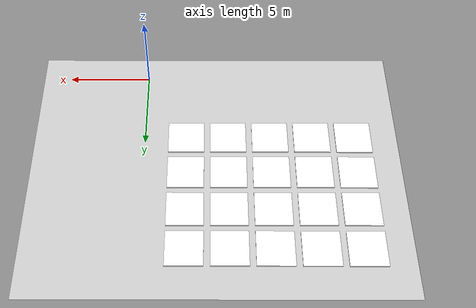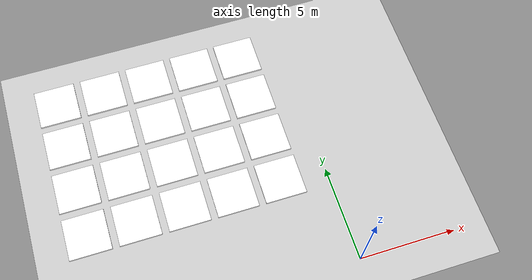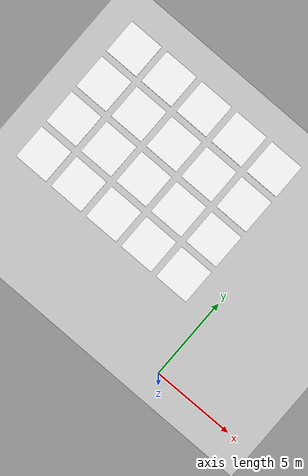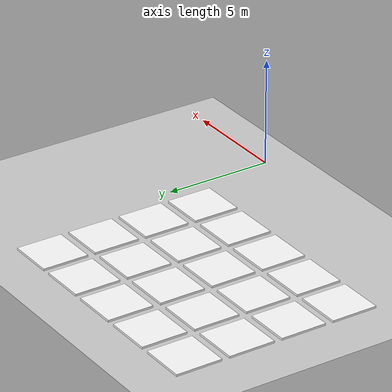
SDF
<sdf version="1.7">
 <world name="default">
  <model name="ground_plane">
   <static>1</static>
   <link name="link">
    <collision name="collision">
     <geometry><plane><normal>0 0 1</normal><size>100 100</size></plane></geometry>
     <surface>
      <contact><collide_bitmask>65535</collide_bitmask></contact>
      <friction><ode><mu>100</mu><mu2>50</mu2></ode></friction>
     </surface>
    </collision>
    <visual name="visual">
     <cast_shadows>0</cast_shadows>
     <geometry><plane><normal>0 0 1</normal><size>100 100</size></plane></geometry>
     <material>
      <script><uri>file://media/materials/scripts/gazebo.material</uri><name>Gazebo/Grey</name></script>
     </material>
    </visual>
   </link>
  </model>
  <model name="top_view_fuel_cluster_7_1">
   <link name="link">
    <inertial>
     <mass>0.489843</mass>
     <inertia>
      <ixx>0.0410659</ixx>
      <ixy>0</ixy>
      <ixz>0</ixz>
      <iyy>0.0410658</iyy>
      <iyz>0</iyz>
      <izz>0.0816405</izz>
     </inertia>
    </inertial>
    <visual name="visual">
     <geometry><box><size>2.14 2.14 0.099999</size></box></geometry>
     <material>
      <script>
       <uri>model://top_view_fuel_cluster/materials/scripts</uri>
       <uri>model://top_view_fuel_cluster/materials/textures</uri>
       <name>snf/Diffuse</name>
      </script>
      <shader type="pixel"><normal_map>__default__</normal_map></shader>
      <ambient>0.3 0.3 0.3 1</ambient>
      <diffuse>1 1 1 1</diffuse>
      <specular>0.01 0.01 0.01 1</specular>
      <emissive>0 0 0 1</emissive>
     </material>
    </visual>
    <collision name="collision">
     <geometry><box><size>2.14 2.14 0.100001</size></box></geometry>
     <surface>
      <friction>
       <ode><mu>1</mu><mu2>1</mu2><fdir1>0 0 0</fdir1><slip1>0</slip1><slip2>0</slip2></ode>
       <torsional>
        <coefficient>1</coefficient>
        <patch_radius>0</patch_radius>
        <surface_radius>0</surface_radius>
        <use_patch_radius>1</use_patch_radius>
        <ode><slip>0</slip></ode>
       </torsional>
      </friction>
      <bounce><restitution_coefficient>0</restitution_coefficient><threshold>1e+06</threshold></bounce>
      <contact>
       <collide_without_contact>0</collide_without_contact>
       <collide_without_contact_bitmask>1</collide_without_contact_bitmask>
       <collide_bitmask>1</collide_bitmask>
       <ode>
        <soft_cfm>0</soft_cfm>
        <soft_erp>0.2</soft_erp>
        <kp>1e+13</kp>
        <kd>1</kd>
        <max_vel>0.01</max_vel>
        <min_depth>0</min_depth>
       </ode>
       <bullet>
        <split_impulse>1</split_impulse>
        <split_impulse_penetration_threshold>-0.01</split_impulse_penetration_threshold>
        <soft_cfm>0</soft_cfm>
        <soft_erp>0.2</soft_erp>
        <kp>1e+13</kp>
        <kd>1</kd>
       </bullet>
      </contact>
     </surface>
    </collision>
   </link>
   <static>0</static>
   <pose>-12.5 5 0.5 0 -0 0</pose>
  </model>
  <model name="top_view_fuel_cluster_7_2">
   <link name="link">
    <inertial>
     <mass>0.489843</mass>
     <inertia>
      <ixx>0.0410659</ixx>
      <ixy>0</ixy>
      <ixz>0</ixz>
      <iyy>0.0410658</iyy>
      <iyz>0</iyz>
      <izz>0.0816405</izz>
     </inertia>
    </inertial>
    <visual name="visual">
     <geometry><box><size>2.14 2.14 0.099999</size></box></geometry>
     <material>
      <script>
       <uri>model://top_view_fuel_cluster/materials/scripts</uri>
       <uri>model://top_view_fuel_cluster/materials/textures</uri>
       <name>snf/Diffuse</name>
      </script>
      <shader type="pixel"><normal_map>__default__</normal_map></shader>
      <ambient>0.3 0.3 0.3 1</ambient>
      <diffuse>1 1 1 1</diffuse>
      <specular>0.01 0.01 0.01 1</specular>
      <emissive>0 0 0 1</emissive>
     </material>
    </visual>
    <collision name="collision">
     <geometry><box><size>2.14 2.14 0.100001</size></box></geometry>
     <surface>
      <friction>
       <ode><mu>1</mu><mu2>1</mu2><fdir1>0 0 0</fdir1><slip1>0</slip1><slip2>0</slip2></ode>
       <torsional>
        <coefficient>1</coefficient>
        <patch_radius>0</patch_radius>
        <surface_radius>0</surface_radius>
        <use_patch_radius>1</use_patch_radius>
        <ode><slip>0</slip></ode>
       </torsional>
      </friction>
      <bounce><restitution_coefficient>0</restitution_coefficient><threshold>1e+06</threshold></bounce>
      <contact>
       <collide_without_contact>0</collide_without_contact>
       <collide_without_contact_bitmask>1</collide_without_contact_bitmask>
       <collide_bitmask>1</collide_bitmask>
       <ode>
        <soft_cfm>0</soft_cfm>
        <soft_erp>0.2</soft_erp>
        <kp>1e+13</kp>
        <kd>1</kd>
        <max_vel>0.01</max_vel>
        <min_depth>0</min_depth>
       </ode>
       <bullet>
        <split_impulse>1</split_impulse>
        <split_impulse_penetration_threshold>-0.01</split_impulse_penetration_threshold>
        <soft_cfm>0</soft_cfm>
        <soft_erp>0.2</soft_erp>
        <kp>1e+13</kp>
        <kd>1</kd>
       </bullet>
      </contact>
     </surface>
    </collision>
   </link>
   <static>0</static>
   <pose>-10 5 0.5 0 -0 0</pose>
  </model>
  <model name="top_view_fuel_cluster_7_3">
   <link name="link">
    <inertial>
     <mass>0.489843</mass>
     <inertia>
      <ixx>0.0410659</ixx>
      <ixy>0</ixy>
      <ixz>0</ixz>
      <iyy>0.0410658</iyy>
      <iyz>0</iyz>
      <izz>0.0816405</izz>
     </inertia>
    </inertial>
    <visual name="visual">
     <geometry><box><size>2.14 2.14 0.099999</size></box></geometry>
     <material>
      <script>
       <uri>model://top_view_fuel_cluster/materials/scripts</uri>
       <uri>model://top_view_fuel_cluster/materials/textures</uri>
       <name>snf/Diffuse</name>
      </script>
      <shader type="pixel"><normal_map>__default__</normal_map></shader>
      <ambient>0.3 0.3 0.3 1</ambient>
      <diffuse>1 1 1 1</diffuse>
      <specular>0.01 0.01 0.01 1</specular>
      <emissive>0 0 0 1</emissive>
     </material>
    </visual>
    <collision name="collision">
     <geometry><box><size>2.14 2.14 0.100001</size></box></geometry>
     <surface>
      <friction>
       <ode><mu>1</mu><mu2>1</mu2><fdir1>0 0 0</fdir1><slip1>0</slip1><slip2>0</slip2></ode>
       <torsional>
        <coefficient>1</coefficient>
        <patch_radius>0</patch_radius>
        <surface_radius>0</surface_radius>
        <use_patch_radius>1</use_patch_radius>
        <ode><slip>0</slip></ode>
       </torsional>
      </friction>
      <bounce><restitution_coefficient>0</restitution_coefficient><threshold>1e+06</threshold></bounce>
      <contact>
       <collide_without_contact>0</collide_without_contact>
       <collide_without_contact_bitmask>1</collide_without_contact_bitmask>
       <collide_bitmask>1</collide_bitmask>
       <ode>
        <soft_cfm>0</soft_cfm>
        <soft_erp>0.2</soft_erp>
        <kp>1e+13</kp>
        <kd>1</kd>
        <max_vel>0.01</max_vel>
        <min_depth>0</min_depth>
       </ode>
       <bullet>
        <split_impulse>1</split_impulse>
        <split_impulse_penetration_threshold>-0.01</split_impulse_penetration_threshold>
        <soft_cfm>0</soft_cfm>
        <soft_erp>0.2</soft_erp>
        <kp>1e+13</kp>
        <kd>1</kd>
       </bullet>
      </contact>
     </surface>
    </collision>
   </link>
   <static>0</static>
   <pose>-7.5 5 0.5 0 -0 0</pose>
  </model>
  <model name="top_view_fuel_cluster_7_4">
   <link name="link">
    <inertial>
     <mass>0.489843</mass>
     <inertia>
      <ixx>0.0410659</ixx>
      <ixy>0</ixy>
      <ixz>0</ixz>
      <iyy>0.0410658</iyy>
      <iyz>0</iyz>
      <izz>0.0816405</izz>
     </inertia>
    </inertial>
    <visual name="visual">
     <geometry><box><size>2.14 2.14 0.099999</size></box></geometry>
     <material>
      <script>
       <uri>model://top_view_fuel_cluster/materials/scripts</uri>
       <uri>model://top_view_fuel_cluster/materials/textures</uri>
       <name>snf/Diffuse</name>
      </script>
      <shader type="pixel"><normal_map>__default__</normal_map></shader>
      <ambient>0.3 0.3 0.3 1</ambient>
      <diffuse>1 1 1 1</diffuse>
      <specular>0.01 0.01 0.01 1</specular>
      <emissive>0 0 0 1</emissive>
     </material>
    </visual>
    <collision name="collision">
     <geometry><box><size>2.14 2.14 0.100001</size></box></geometry>
     <surface>
      <friction>
       <ode><mu>1</mu><mu2>1</mu2><fdir1>0 0 0</fdir1><slip1>0</slip1><slip2>0</slip2></ode>
       <torsional>
        <coefficient>1</coefficient>
        <patch_radius>0</patch_radius>
        <surface_radius>0</surface_radius>
        <use_patch_radius>1</use_patch_radius>
        <ode><slip>0</slip></ode>
       </torsional>
      </friction>
      <bounce><restitution_coefficient>0</restitution_coefficient><threshold>1e+06</threshold></bounce>
      <contact>
       <collide_without_contact>0</collide_without_contact>
       <collide_without_contact_bitmask>1</collide_without_contact_bitmask>
       <collide_bitmask>1</collide_bitmask>
       <ode>
        <soft_cfm>0</soft_cfm>
        <soft_erp>0.2</soft_erp>
        <kp>1e+13</kp>
        <kd>1</kd>
        <max_vel>0.01</max_vel>
        <min_depth>0</min_depth>
       </ode>
       <bullet>
        <split_impulse>1</split_impulse>
        <split_impulse_penetration_threshold>-0.01</split_impulse_penetration_threshold>
        <soft_cfm>0</soft_cfm>
        <soft_erp>0.2</soft_erp>
        <kp>1e+13</kp>
        <kd>1</kd>
       </bullet>
      </contact>
     </surface>
    </collision>
   </link>
   <static>0</static>
   <pose>-5 5 0.5 0 -0 0</pose>
  </model>
  <model name="top_view_fuel_cluster_7_5">
   <link name="link">
    <inertial>
     <mass>0.489843</mass>
     <inertia>
      <ixx>0.0410659</ixx>
      <ixy>0</ixy>
      <ixz>0</ixz>
      <iyy>0.0410658</iyy>
      <iyz>0</iyz>
      <izz>0.0816405</izz>
     </inertia>
    </inertial>
    <visual name="visual">
     <geometry><box><size>2.14 2.14 0.099999</size></box></geometry>
     <material>
      <script>
       <uri>model://top_view_fuel_cluster/materials/scripts</uri>
       <uri>model://top_view_fuel_cluster/materials/textures</uri>
       <name>snf/Diffuse</name>
      </script>
      <shader type="pixel"><normal_map>__default__</normal_map></shader>
      <ambient>0.3 0.3 0.3 1</ambient>
      <diffuse>1 1 1 1</diffuse>
      <specular>0.01 0.01 0.01 1</specular>
      <emissive>0 0 0 1</emissive>
     </material>
    </visual>
    <collision name="collision">
     <geometry><box><size>2.14 2.14 0.100001</size></box></geometry>
     <surface>
      <friction>
       <ode><mu>1</mu><mu2>1</mu2><fdir1>0 0 0</fdir1><slip1>0</slip1><slip2>0</slip2></ode>
       <torsional>
        <coefficient>1</coefficient>
        <patch_radius>0</patch_radius>
        <surface_radius>0</surface_radius>
        <use_patch_radius>1</use_patch_radius>
        <ode><slip>0</slip></ode>
       </torsional>
      </friction>
      <bounce><restitution_coefficient>0</restitution_coefficient><threshold>1e+06</threshold></bounce>
      <contact>
       <collide_without_contact>0</collide_without_contact>
       <collide_without_contact_bitmask>1</collide_without_contact_bitmask>
       <collide_bitmask>1</collide_bitmask>
       <ode>
        <soft_cfm>0</soft_cfm>
        <soft_erp>0.2</soft_erp>
        <kp>1e+13</kp>
        <kd>1</kd>
        <max_vel>0.01</max_vel>
        <min_depth>0</min_depth>
       </ode>
       <bullet>
        <split_impulse>1</split_impulse>
        <split_impulse_penetration_threshold>-0.01</split_impulse_penetration_threshold>
        <soft_cfm>0</soft_cfm>
        <soft_erp>0.2</soft_erp>
        <kp>1e+13</kp>
        <kd>1</kd>
       </bullet>
      </contact>
     </surface>
    </collision>
   </link>
   <static>0</static>
   <pose>-2.5 5 0.5 0 -0 0</pose>
  </model>
  <model name="top_view_fuel_cluster_8_1">
   <link name="link">
    <inertial>
     <mass>0.489843</mass>
     <inertia>
      <ixx>0.0410659</ixx>
      <ixy>0</ixy>
      <ixz>0</ixz>
      <iyy>0.0410658</iyy>
      <iyz>0</iyz>
      <izz>0.0816405</izz>
     </inertia>
    </inertial>
    <visual name="visual">
     <geometry><box><size>2.14 2.14 0.099999</size></box></geometry>
     <material>
      <script>
       <uri>model://top_view_fuel_cluster/materials/scripts</uri>
       <uri>model://top_view_fuel_cluster/materials/textures</uri>
       <name>snf/Diffuse</name>
      </script>
      <shader type="pixel"><normal_map>__default__</normal_map></shader>
      <ambient>0.3 0.3 0.3 1</ambient>
      <diffuse>1 1 1 1</diffuse>
      <specular>0.01 0.01 0.01 1</specular>
      <emissive>0 0 0 1</emissive>
     </material>
    </visual>
    <collision name="collision">
     <geometry><box><size>2.14 2.14 0.100001</size></box></geometry>
     <surface>
      <friction>
       <ode><mu>1</mu><mu2>1</mu2><fdir1>0 0 0</fdir1><slip1>0</slip1><slip2>0</slip2></ode>
       <torsional>
        <coefficient>1</coefficient>
        <patch_radius>0</patch_radius>
        <surface_radius>0</surface_radius>
        <use_patch_radius>1</use_patch_radius>
        <ode><slip>0</slip></ode>
       </torsional>
      </friction>
      <bounce><restitution_coefficient>0</restitution_coefficient><threshold>1e+06</threshold></bounce>
      <contact>
       <collide_without_contact>0</collide_without_contact>
       <collide_without_contact_bitmask>1</collide_without_contact_bitmask>
       <collide_bitmask>1</collide_bitmask>
       <ode>
        <soft_cfm>0</soft_cfm>
        <soft_erp>0.2</soft_erp>
        <kp>1e+13</kp>
        <kd>1</kd>
        <max_vel>0.01</max_vel>
        <min_depth>0</min_depth>
       </ode>
       <bullet>
        <split_impulse>1</split_impulse>
        <split_impulse_penetration_threshold>-0.01</split_impulse_penetration_threshold>
        <soft_cfm>0</soft_cfm>
        <soft_erp>0.2</soft_erp>
        <kp>1e+13</kp>
        <kd>1</kd>
       </bullet>
      </contact>
     </surface>
    </collision>
   </link>
   <static>0</static>
   <pose>-12.5 7.5 0.5 0 -0 0</pose>
  </model>
  <model name="top_view_fuel_cluster_8_2">
   <link name="link">
    <inertial>
     <mass>0.489843</mass>
     <inertia>
      <ixx>0.0410659</ixx>
      <ixy>0</ixy>
      <ixz>0</ixz>
      <iyy>0.0410658</iyy>
      <iyz>0</iyz>
      <izz>0.0816405</izz>
     </inertia>
    </inertial>
    <visual name="visual">
     <geometry><box><size>2.14 2.14 0.099999</size></box></geometry>
     <material>
      <script>
       <uri>model://top_view_fuel_cluster/materials/scripts</uri>
       <uri>model://top_view_fuel_cluster/materials/textures</uri>
       <name>snf/Diffuse</name>
      </script>
      <shader type="pixel"><normal_map>__default__</normal_map></shader>
      <ambient>0.3 0.3 0.3 1</ambient>
      <diffuse>1 1 1 1</diffuse>
      <specular>0.01 0.01 0.01 1</specular>
      <emissive>0 0 0 1</emissive>
     </material>
    </visual>
    <collision name="collision">
     <geometry><box><size>2.14 2.14 0.100001</size></box></geometry>
     <surface>
      <friction>
       <ode><mu>1</mu><mu2>1</mu2><fdir1>0 0 0</fdir1><slip1>0</slip1><slip2>0</slip2></ode>
       <torsional>
        <coefficient>1</coefficient>
        <patch_radius>0</patch_radius>
        <surface_radius>0</surface_radius>
        <use_patch_radius>1</use_patch_radius>
        <ode><slip>0</slip></ode>
       </torsional>
      </friction>
      <bounce><restitution_coefficient>0</restitution_coefficient><threshold>1e+06</threshold></bounce>
      <contact>
       <collide_without_contact>0</collide_without_contact>
       <collide_without_contact_bitmask>1</collide_without_contact_bitmask>
       <collide_bitmask>1</collide_bitmask>
       <ode>
        <soft_cfm>0</soft_cfm>
        <soft_erp>0.2</soft_erp>
        <kp>1e+13</kp>
        <kd>1</kd>
        <max_vel>0.01</max_vel>
        <min_depth>0</min_depth>
       </ode>
       <bullet>
        <split_impulse>1</split_impulse>
        <split_impulse_penetration_threshold>-0.01</split_impulse_penetration_threshold>
        <soft_cfm>0</soft_cfm>
        <soft_erp>0.2</soft_erp>
        <kp>1e+13</kp>
        <kd>1</kd>
       </bullet>
      </contact>
     </surface>
    </collision>
   </link>
   <static>0</static>
   <pose>-10 7.5 0.5 0 -0 0</pose>
  </model>
  <model name="top_view_fuel_cluster_8_3">
   <link name="link">
    <inertial>
     <mass>0.489843</mass>
     <inertia>
      <ixx>0.0410659</ixx>
      <ixy>0</ixy>
      <ixz>0</ixz>
      <iyy>0.0410658</iyy>
      <iyz>0</iyz>
      <izz>0.0816405</izz>
     </inertia>
    </inertial>
    <visual name="visual">
     <geometry><box><size>2.14 2.14 0.099999</size></box></geometry>
     <material>
      <script>
       <uri>model://top_view_fuel_cluster/materials/scripts</uri>
       <uri>model://top_view_fuel_cluster/materials/textures</uri>
       <name>snf/Diffuse</name>
      </script>
      <shader type="pixel"><normal_map>__default__</normal_map></shader>
      <ambient>0.3 0.3 0.3 1</ambient>
      <diffuse>1 1 1 1</diffuse>
      <specular>0.01 0.01 0.01 1</specular>
      <emissive>0 0 0 1</emissive>
     </material>
    </visual>
    <collision name="collision">
     <geometry><box><size>2.14 2.14 0.100001</size></box></geometry>
     <surface>
      <friction>
       <ode><mu>1</mu><mu2>1</mu2><fdir1>0 0 0</fdir1><slip1>0</slip1><slip2>0</slip2></ode>
       <torsional>
        <coefficient>1</coefficient>
        <patch_radius>0</patch_radius>
        <surface_radius>0</surface_radius>
        <use_patch_radius>1</use_patch_radius>
        <ode><slip>0</slip></ode>
       </torsional>
      </friction>
      <bounce><restitution_coefficient>0</restitution_coefficient><threshold>1e+06</threshold></bounce>
      <contact>
       <collide_without_contact>0</collide_without_contact>
       <collide_without_contact_bitmask>1</collide_without_contact_bitmask>
       <collide_bitmask>1</collide_bitmask>
       <ode>
        <soft_cfm>0</soft_cfm>
        <soft_erp>0.2</soft_erp>
        <kp>1e+13</kp>
        <kd>1</kd>
        <max_vel>0.01</max_vel>
        <min_depth>0</min_depth>
       </ode>
       <bullet>
        <split_impulse>1</split_impulse>
        <split_impulse_penetration_threshold>-0.01</split_impulse_penetration_threshold>
        <soft_cfm>0</soft_cfm>
        <soft_erp>0.2</soft_erp>
        <kp>1e+13</kp>
        <kd>1</kd>
       </bullet>
      </contact>
     </surface>
    </collision>
   </link>
   <static>0</static>
   <pose>-7.5 7.5 0.5 0 -0 0</pose>
  </model>
  <model name="top_view_fuel_cluster_8_4">
   <link name="link">
    <inertial>
     <mass>0.489843</mass>
     <inertia>
      <ixx>0.0410659</ixx>
      <ixy>0</ixy>
      <ixz>0</ixz>
      <iyy>0.0410658</iyy>
      <iyz>0</iyz>
      <izz>0.0816405</izz>
     </inertia>
    </inertial>
    <visual name="visual">
     <geometry><box><size>2.14 2.14 0.099999</size></box></geometry>
     <material>
      <script>
       <uri>model://top_view_fuel_cluster/materials/scripts</uri>
       <uri>model://top_view_fuel_cluster/materials/textures</uri>
       <name>snf/Diffuse</name>
      </script>
      <shader type="pixel"><normal_map>__default__</normal_map></shader>
      <ambient>0.3 0.3 0.3 1</ambient>
      <diffuse>1 1 1 1</diffuse>
      <specular>0.01 0.01 0.01 1</specular>
      <emissive>0 0 0 1</emissive>
     </material>
    </visual>
    <collision name="collision">
     <geometry><box><size>2.14 2.14 0.100001</size></box></geometry>
     <surface>
      <friction>
       <ode><mu>1</mu><mu2>1</mu2><fdir1>0 0 0</fdir1><slip1>0</slip1><slip2>0</slip2></ode>
       <torsional>
        <coefficient>1</coefficient>
        <patch_radius>0</patch_radius>
        <surface_radius>0</surface_radius>
        <use_patch_radius>1</use_patch_radius>
        <ode><slip>0</slip></ode>
       </torsional>
      </friction>
      <bounce><restitution_coefficient>0</restitution_coefficient><threshold>1e+06</threshold></bounce>
      <contact>
       <collide_without_contact>0</collide_without_contact>
       <collide_without_contact_bitmask>1</collide_without_contact_bitmask>
       <collide_bitmask>1</collide_bitmask>
       <ode>
        <soft_cfm>0</soft_cfm>
        <soft_erp>0.2</soft_erp>
        <kp>1e+13</kp>
        <kd>1</kd>
        <max_vel>0.01</max_vel>
        <min_depth>0</min_depth>
       </ode>
       <bullet>
        <split_impulse>1</split_impulse>
        <split_impulse_penetration_threshold>-0.01</split_impulse_penetration_threshold>
        <soft_cfm>0</soft_cfm>
        <soft_erp>0.2</soft_erp>
        <kp>1e+13</kp>
        <kd>1</kd>
       </bullet>
      </contact>
     </surface>
    </collision>
   </link>
   <static>0</static>
   <pose>-5 7.5 0.5 0 -0 0</pose>
  </model>
  <model name="top_view_fuel_cluster_8_5">
   <link name="link">
    <inertial>
     <mass>0.489843</mass>
     <inertia>
      <ixx>0.0410659</ixx>
      <ixy>0</ixy>
      <ixz>0</ixz>
      <iyy>0.0410658</iyy>
      <iyz>0</iyz>
      <izz>0.0816405</izz>
     </inertia>
    </inertial>
    <visual name="visual">
     <geometry><box><size>2.14 2.14 0.099999</size></box></geometry>
     <material>
      <script>
       <uri>model://top_view_fuel_cluster/materials/scripts</uri>
       <uri>model://top_view_fuel_cluster/materials/textures</uri>
       <name>snf/Diffuse</name>
      </script>
      <shader type="pixel"><normal_map>__default__</normal_map></shader>
      <ambient>0.3 0.3 0.3 1</ambient>
      <diffuse>1 1 1 1</diffuse>
      <specular>0.01 0.01 0.01 1</specular>
      <emissive>0 0 0 1</emissive>
     </material>
    </visual>
    <collision name="collision">
     <geometry><box><size>2.14 2.14 0.100001</size></box></geometry>
     <surface>
      <friction>
       <ode><mu>1</mu><mu2>1</mu2><fdir1>0 0 0</fdir1><slip1>0</slip1><slip2>0</slip2></ode>
       <torsional>
        <coefficient>1</coefficient>
        <patch_radius>0</patch_radius>
        <surface_radius>0</surface_radius>
        <use_patch_radius>1</use_patch_radius>
        <ode><slip>0</slip></ode>
       </torsional>
      </friction>
      <bounce><restitution_coefficient>0</restitution_coefficient><threshold>1e+06</threshold></bounce>
      <contact>
       <collide_without_contact>0</collide_without_contact>
       <collide_without_contact_bitmask>1</collide_without_contact_bitmask>
       <collide_bitmask>1</collide_bitmask>
       <ode>
        <soft_cfm>0</soft_cfm>
        <soft_erp>0.2</soft_erp>
        <kp>1e+13</kp>
        <kd>1</kd>
        <max_vel>0.01</max_vel>
        <min_depth>0</min_depth>
       </ode>
       <bullet>
        <split_impulse>1</split_impulse>
        <split_impulse_penetration_threshold>-0.01</split_impulse_penetration_threshold>
        <soft_cfm>0</soft_cfm>
        <soft_erp>0.2</soft_erp>
        <kp>1e+13</kp>
        <kd>1</kd>
       </bullet>
      </contact>
     </surface>
    </collision>
   </link>
   <static>0</static>
   <pose>-2.5 7.5 0.5 0 -0 0</pose>
  </model>
  <model name="top_view_fuel_cluster_9_1">
   <link name="link">
    <inertial>
     <mass>0.489843</mass>
     <inertia>
      <ixx>0.0410659</ixx>
      <ixy>0</ixy>
      <ixz>0</ixz>
      <iyy>0.0410658</iyy>
      <iyz>0</iyz>
      <izz>0.0816405</izz>
     </inertia>
    </inertial>
    <visual name="visual">
     <geometry><box><size>2.14 2.14 0.099999</size></box></geometry>
     <material>
      <script>
       <uri>model://top_view_fuel_cluster/materials/scripts</uri>
       <uri>model://top_view_fuel_cluster/materials/textures</uri>
       <name>snf/Diffuse</name>
      </script>
      <shader type="pixel"><normal_map>__default__</normal_map></shader>
      <ambient>0.3 0.3 0.3 1</ambient>
      <diffuse>1 1 1 1</diffuse>
      <specular>0.01 0.01 0.01 1</specular>
      <emissive>0 0 0 1</emissive>
     </material>
    </visual>
    <collision name="collision">
     <geometry><box><size>2.14 2.14 0.100001</size></box></geometry>
     <surface>
      <friction>
       <ode><mu>1</mu><mu2>1</mu2><fdir1>0 0 0</fdir1><slip1>0</slip1><slip2>0</slip2></ode>
       <torsional>
        <coefficient>1</coefficient>
        <patch_radius>0</patch_radius>
        <surface_radius>0</surface_radius>
        <use_patch_radius>1</use_patch_radius>
        <ode><slip>0</slip></ode>
       </torsional>
      </friction>
      <bounce><restitution_coefficient>0</restitution_coefficient><threshold>1e+06</threshold></bounce>
      <contact>
       <collide_without_contact>0</collide_without_contact>
       <collide_without_contact_bitmask>1</collide_without_contact_bitmask>
       <collide_bitmask>1</collide_bitmask>
       <ode>
        <soft_cfm>0</soft_cfm>
        <soft_erp>0.2</soft_erp>
        <kp>1e+13</kp>
        <kd>1</kd>
        <max_vel>0.01</max_vel>
        <min_depth>0</min_depth>
       </ode>
       <bullet>
        <split_impulse>1</split_impulse>
        <split_impulse_penetration_threshold>-0.01</split_impulse_penetration_threshold>
        <soft_cfm>0</soft_cfm>
        <soft_erp>0.2</soft_erp>
        <kp>1e+13</kp>
        <kd>1</kd>
       </bullet>
      </contact>
     </surface>
    </collision>
   </link>
   <static>0</static>
   <pose>-12.5 10.0 0.5 0 -0 0</pose>
  </model>
  <model name="top_view_fuel_cluster_9_2">
   <link name="link">
    <inertial>
     <mass>0.489843</mass>
     <inertia>
      <ixx>0.0410659</ixx>
      <ixy>0</ixy>
      <ixz>0</ixz>
      <iyy>0.0410658</iyy>
      <iyz>0</iyz>
      <izz>0.0816405</izz>
     </inertia>
    </inertial>
    <visual name="visual">
     <geometry><box><size>2.14 2.14 0.099999</size></box></geometry>
     <material>
      <script>
       <uri>model://top_view_fuel_cluster/materials/scripts</uri>
       <uri>model://top_view_fuel_cluster/materials/textures</uri>
       <name>snf/Diffuse</name>
      </script>
      <shader type="pixel"><normal_map>__default__</normal_map></shader>
      <ambient>0.3 0.3 0.3 1</ambient>
      <diffuse>1 1 1 1</diffuse>
      <specular>0.01 0.01 0.01 1</specular>
      <emissive>0 0 0 1</emissive>
     </material>
    </visual>
    <collision name="collision">
     <geometry><box><size>2.14 2.14 0.100001</size></box></geometry>
     <surface>
      <friction>
       <ode><mu>1</mu><mu2>1</mu2><fdir1>0 0 0</fdir1><slip1>0</slip1><slip2>0</slip2></ode>
       <torsional>
        <coefficient>1</coefficient>
        <patch_radius>0</patch_radius>
        <surface_radius>0</surface_radius>
        <use_patch_radius>1</use_patch_radius>
        <ode><slip>0</slip></ode>
       </torsional>
      </friction>
      <bounce><restitution_coefficient>0</restitution_coefficient><threshold>1e+06</threshold></bounce>
      <contact>
       <collide_without_contact>0</collide_without_contact>
       <collide_without_contact_bitmask>1</collide_without_contact_bitmask>
       <collide_bitmask>1</collide_bitmask>
       <ode>
        <soft_cfm>0</soft_cfm>
        <soft_erp>0.2</soft_erp>
        <kp>1e+13</kp>
        <kd>1</kd>
        <max_vel>0.01</max_vel>
        <min_depth>0</min_depth>
       </ode>
       <bullet>
        <split_impulse>1</split_impulse>
        <split_impulse_penetration_threshold>-0.01</split_impulse_penetration_threshold>
        <soft_cfm>0</soft_cfm>
        <soft_erp>0.2</soft_erp>
        <kp>1e+13</kp>
        <kd>1</kd>
       </bullet>
      </contact>
     </surface>
    </collision>
   </link>
   <static>0</static>
   <pose>-10 10.0 0.5 0 -0 0</pose>
  </model>
  <model name="top_view_fuel_cluster_9_3">
   <link name="link">
    <inertial>
     <mass>0.489843</mass>
     <inertia>
      <ixx>0.0410659</ixx>
      <ixy>0</ixy>
      <ixz>0</ixz>
      <iyy>0.0410658</iyy>
      <iyz>0</iyz>
      <izz>0.0816405</izz>
     </inertia>
    </inertial>
    <visual name="visual">
     <geometry><box><size>2.14 2.14 0.099999</size></box></geometry>
     <material>
      <script>
       <uri>model://top_view_fuel_cluster/materials/scripts</uri>
       <uri>model://top_view_fuel_cluster/materials/textures</uri>
       <name>snf/Diffuse</name>
      </script>
      <shader type="pixel"><normal_map>__default__</normal_map></shader>
      <ambient>0.3 0.3 0.3 1</ambient>
      <diffuse>1 1 1 1</diffuse>
      <specular>0.01 0.01 0.01 1</specular>
      <emissive>0 0 0 1</emissive>
     </material>
    </visual>
    <collision name="collision">
     <geometry><box><size>2.14 2.14 0.100001</size></box></geometry>
     <surface>
      <friction>
       <ode><mu>1</mu><mu2>1</mu2><fdir1>0 0 0</fdir1><slip1>0</slip1><slip2>0</slip2></ode>
       <torsional>
        <coefficient>1</coefficient>
        <patch_radius>0</patch_radius>
        <surface_radius>0</surface_radius>
        <use_patch_radius>1</use_patch_radius>
        <ode><slip>0</slip></ode>
       </torsional>
      </friction>
      <bounce><restitution_coefficient>0</restitution_coefficient><threshold>1e+06</threshold></bounce>
      <contact>
       <collide_without_contact>0</collide_without_contact>
       <collide_without_contact_bitmask>1</collide_without_contact_bitmask>
       <collide_bitmask>1</collide_bitmask>
       <ode>
        <soft_cfm>0</soft_cfm>
        <soft_erp>0.2</soft_erp>
        <kp>1e+13</kp>
        <kd>1</kd>
        <max_vel>0.01</max_vel>
        <min_depth>0</min_depth>
       </ode>
       <bullet>
        <split_impulse>1</split_impulse>
        <split_impulse_penetration_threshold>-0.01</split_impulse_penetration_threshold>
        <soft_cfm>0</soft_cfm>
        <soft_erp>0.2</soft_erp>
        <kp>1e+13</kp>
        <kd>1</kd>
       </bullet>
      </contact>
     </surface>
    </collision>
   </link>
   <static>0</static>
   <pose>-7.5 10.0 0.5 0 -0 0</pose>
  </model>
  <model name="top_view_fuel_cluster_9_4">
   <link name="link">
    <inertial>
     <mass>0.489843</mass>
     <inertia>
      <ixx>0.0410659</ixx>
      <ixy>0</ixy>
      <ixz>0</ixz>
      <iyy>0.0410658</iyy>
      <iyz>0</iyz>
      <izz>0.0816405</izz>
     </inertia>
    </inertial>
    <visual name="visual">
     <geometry><box><size>2.14 2.14 0.099999</size></box></geometry>
     <material>
      <script>
       <uri>model://top_view_fuel_cluster/materials/scripts</uri>
       <uri>model://top_view_fuel_cluster/materials/textures</uri>
       <name>snf/Diffuse</name>
      </script>
      <shader type="pixel"><normal_map>__default__</normal_map></shader>
      <ambient>0.3 0.3 0.3 1</ambient>
      <diffuse>1 1 1 1</diffuse>
      <specular>0.01 0.01 0.01 1</specular>
      <emissive>0 0 0 1</emissive>
     </material>
    </visual>
    <collision name="collision">
     <geometry><box><size>2.14 2.14 0.100001</size></box></geometry>
     <surface>
      <friction>
       <ode><mu>1</mu><mu2>1</mu2><fdir1>0 0 0</fdir1><slip1>0</slip1><slip2>0</slip2></ode>
       <torsional>
        <coefficient>1</coefficient>
        <patch_radius>0</patch_radius>
        <surface_radius>0</surface_radius>
        <use_patch_radius>1</use_patch_radius>
        <ode><slip>0</slip></ode>
       </torsional>
      </friction>
      <bounce><restitution_coefficient>0</restitution_coefficient><threshold>1e+06</threshold></bounce>
      <contact>
       <collide_without_contact>0</collide_without_contact>
       <collide_without_contact_bitmask>1</collide_without_contact_bitmask>
       <collide_bitmask>1</collide_bitmask>
       <ode>
        <soft_cfm>0</soft_cfm>
        <soft_erp>0.2</soft_erp>
        <kp>1e+13</kp>
        <kd>1</kd>
        <max_vel>0.01</max_vel>
        <min_depth>0</min_depth>
       </ode>
       <bullet>
        <split_impulse>1</split_impulse>
        <split_impulse_penetration_threshold>-0.01</split_impulse_penetration_threshold>
        <soft_cfm>0</soft_cfm>
        <soft_erp>0.2</soft_erp>
        <kp>1e+13</kp>
        <kd>1</kd>
       </bullet>
      </contact>
     </surface>
    </collision>
   </link>
   <static>0</static>
   <pose>-5 10.0 0.5 0 -0 0</pose>
  </model>
  <model name="top_view_fuel_cluster_9_5">
   <link name="link">
    <inertial>
     <mass>0.489843</mass>
     <inertia>
      <ixx>0.0410659</ixx>
      <ixy>0</ixy>
      <ixz>0</ixz>
      <iyy>0.0410658</iyy>
      <iyz>0</iyz>
      <izz>0.0816405</izz>
     </inertia>
    </inertial>
    <visual name="visual">
     <geometry><box><size>2.14 2.14 0.099999</size></box></geometry>
     <material>
      <script>
       <uri>model://top_view_fuel_cluster/materials/scripts</uri>
       <uri>model://top_view_fuel_cluster/materials/textures</uri>
       <name>snf/Diffuse</name>
      </script>
      <shader type="pixel"><normal_map>__default__</normal_map></shader>
      <ambient>0.3 0.3 0.3 1</ambient>
      <diffuse>1 1 1 1</diffuse>
      <specular>0.01 0.01 0.01 1</specular>
      <emissive>0 0 0 1</emissive>
     </material>
    </visual>
    <collision name="collision">
     <geometry><box><size>2.14 2.14 0.100001</size></box></geometry>
     <surface>
      <friction>
       <ode><mu>1</mu><mu2>1</mu2><fdir1>0 0 0</fdir1><slip1>0</slip1><slip2>0</slip2></ode>
       <torsional>
        <coefficient>1</coefficient>
        <patch_radius>0</patch_radius>
        <surface_radius>0</surface_radius>
        <use_patch_radius>1</use_patch_radius>
        <ode><slip>0</slip></ode>
       </torsional>
      </friction>
      <bounce><restitution_coefficient>0</restitution_coefficient><threshold>1e+06</threshold></bounce>
      <contact>
       <collide_without_contact>0</collide_without_contact>
       <collide_without_contact_bitmask>1</collide_without_contact_bitmask>
       <collide_bitmask>1</collide_bitmask>
       <ode>
        <soft_cfm>0</soft_cfm>
        <soft_erp>0.2</soft_erp>
        <kp>1e+13</kp>
        <kd>1</kd>
        <max_vel>0.01</max_vel>
        <min_depth>0</min_depth>
       </ode>
       <bullet>
        <split_impulse>1</split_impulse>
        <split_impulse_penetration_threshold>-0.01</split_impulse_penetration_threshold>
        <soft_cfm>0</soft_cfm>
        <soft_erp>0.2</soft_erp>
        <kp>1e+13</kp>
        <kd>1</kd>
       </bullet>
      </contact>
     </surface>
    </collision>
   </link>
   <static>0</static>
   <pose>-2.5 10.0 0.5 0 -0 0</pose>
  </model>
  <model name="top_view_fuel_cluster_10_1">
   <link name="link">
    <inertial>
     <mass>0.489843</mass>
     <inertia>
      <ixx>0.0410659</ixx>
      <ixy>0</ixy>
      <ixz>0</ixz>
      <iyy>0.0410658</iyy>
      <iyz>0</iyz>
      <izz>0.0816405</izz>
     </inertia>
    </inertial>
    <visual name="visual">
     <geometry><box><size>2.14 2.14 0.099999</size></box></geometry>
     <material>
      <script>
       <uri>model://top_view_fuel_cluster/materials/scripts</uri>
       <uri>model://top_view_fuel_cluster/materials/textures</uri>
       <name>snf/Diffuse</name>
      </script>
      <shader type="pixel"><normal_map>__default__</normal_map></shader>
      <ambient>0.3 0.3 0.3 1</ambient>
      <diffuse>1 1 1 1</diffuse>
      <specular>0.01 0.01 0.01 1</specular>
      <emissive>0 0 0 1</emissive>
     </material>
    </visual>
    <collision name="collision">
     <geometry><box><size>2.14 2.14 0.100001</size></box></geometry>
     <surface>
      <friction>
       <ode><mu>1</mu><mu2>1</mu2><fdir1>0 0 0</fdir1><slip1>0</slip1><slip2>0</slip2></ode>
       <torsional>
        <coefficient>1</coefficient>
        <patch_radius>0</patch_radius>
        <surface_radius>0</surface_radius>
        <use_patch_radius>1</use_patch_radius>
        <ode><slip>0</slip></ode>
       </torsional>
      </friction>
      <bounce><restitution_coefficient>0</restitution_coefficient><threshold>1e+06</threshold></bounce>
      <contact>
       <collide_without_contact>0</collide_without_contact>
       <collide_without_contact_bitmask>1</collide_without_contact_bitmask>
       <collide_bitmask>1</collide_bitmask>
       <ode>
        <soft_cfm>0</soft_cfm>
        <soft_erp>0.2</soft_erp>
        <kp>1e+13</kp>
        <kd>1</kd>
        <max_vel>0.01</max_vel>
        <min_depth>0</min_depth>
       </ode>
       <bullet>
        <split_impulse>1</split_impulse>
        <split_impulse_penetration_threshold>-0.01</split_impulse_penetration_threshold>
        <soft_cfm>0</soft_cfm>
        <soft_erp>0.2</soft_erp>
        <kp>1e+13</kp>
        <kd>1</kd>
       </bullet>
      </contact>
     </surface>
    </collision>
   </link>
   <static>0</static>
   <pose>-12.5 12.5 0.5 0 -0 0</pose>
  </model>
  <model name="top_view_fuel_cluster_10_2">
   <link name="link">
    <inertial>
     <mass>0.489843</mass>
     <inertia>
      <ixx>0.0410659</ixx>
      <ixy>0</ixy>
      <ixz>0</ixz>
      <iyy>0.0410658</iyy>
      <iyz>0</iyz>
      <izz>0.0816405</izz>
     </inertia>
    </inertial>
    <visual name="visual">
     <geometry><box><size>2.14 2.14 0.099999</size></box></geometry>
     <material>
      <script>
       <uri>model://top_view_fuel_cluster/materials/scripts</uri>
       <uri>model://top_view_fuel_cluster/materials/textures</uri>
       <name>snf/Diffuse</name>
      </script>
      <shader type="pixel"><normal_map>__default__</normal_map></shader>
      <ambient>0.3 0.3 0.3 1</ambient>
      <diffuse>1 1 1 1</diffuse>
      <specular>0.01 0.01 0.01 1</specular>
      <emissive>0 0 0 1</emissive>
     </material>
    </visual>
    <collision name="collision">
     <geometry><box><size>2.14 2.14 0.100001</size></box></geometry>
     <surface>
      <friction>
       <ode><mu>1</mu><mu2>1</mu2><fdir1>0 0 0</fdir1><slip1>0</slip1><slip2>0</slip2></ode>
       <torsional>
        <coefficient>1</coefficient>
        <patch_radius>0</patch_radius>
        <surface_radius>0</surface_radius>
        <use_patch_radius>1</use_patch_radius>
        <ode><slip>0</slip></ode>
       </torsional>
      </friction>
      <bounce><restitution_coefficient>0</restitution_coefficient><threshold>1e+06</threshold></bounce>
      <contact>
       <collide_without_contact>0</collide_without_contact>
       <collide_without_contact_bitmask>1</collide_without_contact_bitmask>
       <collide_bitmask>1</collide_bitmask>
       <ode>
        <soft_cfm>0</soft_cfm>
        <soft_erp>0.2</soft_erp>
        <kp>1e+13</kp>
        <kd>1</kd>
        <max_vel>0.01</max_vel>
        <min_depth>0</min_depth>
       </ode>
       <bullet>
        <split_impulse>1</split_impulse>
        <split_impulse_penetration_threshold>-0.01</split_impulse_penetration_threshold>
        <soft_cfm>0</soft_cfm>
        <soft_erp>0.2</soft_erp>
        <kp>1e+13</kp>
        <kd>1</kd>
       </bullet>
      </contact>
     </surface>
    </collision>
   </link>
   <static>0</static>
   <pose>-10 12.5 0.5 0 -0 0</pose>
  </model>
  <model name="top_view_fuel_cluster_10_3">
   <link name="link">
    <inertial>
     <mass>0.489843</mass>
     <inertia>
      <ixx>0.0410659</ixx>
      <ixy>0</ixy>
      <ixz>0</ixz>
      <iyy>0.0410658</iyy>
      <iyz>0</iyz>
      <izz>0.0816405</izz>
     </inertia>
    </inertial>
    <visual name="visual">
     <geometry><box><size>2.14 2.14 0.099999</size></box></geometry>
     <material>
      <script>
       <uri>model://top_view_fuel_cluster/materials/scripts</uri>
       <uri>model://top_view_fuel_cluster/materials/textures</uri>
       <name>snf/Diffuse</name>
      </script>
      <shader type="pixel"><normal_map>__default__</normal_map></shader>
      <ambient>0.3 0.3 0.3 1</ambient>
      <diffuse>1 1 1 1</diffuse>
      <specular>0.01 0.01 0.01 1</specular>
      <emissive>0 0 0 1</emissive>
     </material>
    </visual>
    <collision name="collision">
     <geometry><box><size>2.14 2.14 0.100001</size></box></geometry>
     <surface>
      <friction>
       <ode><mu>1</mu><mu2>1</mu2><fdir1>0 0 0</fdir1><slip1>0</slip1><slip2>0</slip2></ode>
       <torsional>
        <coefficient>1</coefficient>
        <patch_radius>0</patch_radius>
        <surface_radius>0</surface_radius>
        <use_patch_radius>1</use_patch_radius>
        <ode><slip>0</slip></ode>
       </torsional>
      </friction>
      <bounce><restitution_coefficient>0</restitution_coefficient><threshold>1e+06</threshold></bounce>
      <contact>
       <collide_without_contact>0</collide_without_contact>
       <collide_without_contact_bitmask>1</collide_without_contact_bitmask>
       <collide_bitmask>1</collide_bitmask>
       <ode>
        <soft_cfm>0</soft_cfm>
        <soft_erp>0.2</soft_erp>
        <kp>1e+13</kp>
        <kd>1</kd>
        <max_vel>0.01</max_vel>
        <min_depth>0</min_depth>
       </ode>
       <bullet>
        <split_impulse>1</split_impulse>
        <split_impulse_penetration_threshold>-0.01</split_impulse_penetration_threshold>
        <soft_cfm>0</soft_cfm>
        <soft_erp>0.2</soft_erp>
        <kp>1e+13</kp>
        <kd>1</kd>
       </bullet>
      </contact>
     </surface>
    </collision>
   </link>
   <static>0</static>
   <pose>-7.5 12.5 0.5 0 -0 0</pose>
  </model>
  <model name="top_view_fuel_cluster_10_4">
   <link name="link">
    <inertial>
     <mass>0.489843</mass>
     <inertia>
      <ixx>0.0410659</ixx>
      <ixy>0</ixy>
      <ixz>0</ixz>
      <iyy>0.0410658</iyy>
      <iyz>0</iyz>
      <izz>0.0816405</izz>
     </inertia>
    </inertial>
    <visual name="visual">
     <geometry><box><size>2.14 2.14 0.099999</size></box></geometry>
     <material>
      <script>
       <uri>model://top_view_fuel_cluster/materials/scripts</uri>
       <uri>model://top_view_fuel_cluster/materials/textures</uri>
       <name>snf/Diffuse</name>
      </script>
      <shader type="pixel"><normal_map>__default__</normal_map></shader>
      <ambient>0.3 0.3 0.3 1</ambient>
      <diffuse>1 1 1 1</diffuse>
      <specular>0.01 0.01 0.01 1</specular>
      <emissive>0 0 0 1</emissive>
     </material>
    </visual>
    <collision name="collision">
     <geometry><box><size>2.14 2.14 0.100001</size></box></geometry>
     <surface>
      <friction>
       <ode><mu>1</mu><mu2>1</mu2><fdir1>0 0 0</fdir1><slip1>0</slip1><slip2>0</slip2></ode>
       <torsional>
        <coefficient>1</coefficient>
        <patch_radius>0</patch_radius>
        <surface_radius>0</surface_radius>
        <use_patch_radius>1</use_patch_radius>
        <ode><slip>0</slip></ode>
       </torsional>
      </friction>
      <bounce><restitution_coefficient>0</restitution_coefficient><threshold>1e+06</threshold></bounce>
      <contact>
       <collide_without_contact>0</collide_without_contact>
       <collide_without_contact_bitmask>1</collide_without_contact_bitmask>
       <collide_bitmask>1</collide_bitmask>
       <ode>
        <soft_cfm>0</soft_cfm>
        <soft_erp>0.2</soft_erp>
        <kp>1e+13</kp>
        <kd>1</kd>
        <max_vel>0.01</max_vel>
        <min_depth>0</min_depth>
       </ode>
       <bullet>
        <split_impulse>1</split_impulse>
        <split_impulse_penetration_threshold>-0.01</split_impulse_penetration_threshold>
        <soft_cfm>0</soft_cfm>
        <soft_erp>0.2</soft_erp>
        <kp>1e+13</kp>
        <kd>1</kd>
       </bullet>
      </contact>
     </surface>
    </collision>
   </link>
   <static>0</static>
   <pose>-5 12.5 0.5 0 -0 0</pose>
  </model>
  <model name="top_view_fuel_cluster_10_5">
   <link name="link">
    <inertial>
     <mass>0.489843</mass>
     <inertia>
      <ixx>0.0410659</ixx>
      <ixy>0</ixy>
      <ixz>0</ixz>
      <iyy>0.0410658</iyy>
      <iyz>0</iyz>
      <izz>0.0816405</izz>
     </inertia>
    </inertial>
    <visual name="visual">
     <geometry><box><size>2.14 2.14 0.099999</size></box></geometry>
     <material>
      <script>
       <uri>model://top_view_fuel_cluster/materials/scripts</uri>
       <uri>model://top_view_fuel_cluster/materials/textures</uri>
       <name>snf/Diffuse</name>
      </script>
      <shader type="pixel"><normal_map>__default__</normal_map></shader>
      <ambient>0.3 0.3 0.3 1</ambient>
      <diffuse>1 1 1 1</diffuse>
      <specular>0.01 0.01 0.01 1</specular>
      <emissive>0 0 0 1</emissive>
     </material>
    </visual>
    <collision name="collision">
     <geometry><box><size>2.14 2.14 0.100001</size></box></geometry>
     <surface>
      <friction>
       <ode><mu>1</mu><mu2>1</mu2><fdir1>0 0 0</fdir1><slip1>0</slip1><slip2>0</slip2></ode>
       <torsional>
        <coefficient>1</coefficient>
        <patch_radius>0</patch_radius>
        <surface_radius>0</surface_radius>
        <use_patch_radius>1</use_patch_radius>
        <ode><slip>0</slip></ode>
       </torsional>
      </friction>
      <bounce><restitution_coefficient>0</restitution_coefficient><threshold>1e+06</threshold></bounce>
      <contact>
       <collide_without_contact>0</collide_without_contact>
       <collide_without_contact_bitmask>1</collide_without_contact_bitmask>
       <collide_bitmask>1</collide_bitmask>
       <ode>
        <soft_cfm>0</soft_cfm>
        <soft_erp>0.2</soft_erp>
        <kp>1e+13</kp>
        <kd>1</kd>
        <max_vel>0.01</max_vel>
        <min_depth>0</min_depth>
       </ode>
       <bullet>
        <split_impulse>1</split_impulse>
        <split_impulse_penetration_threshold>-0.01</split_impulse_penetration_threshold>
        <soft_cfm>0</soft_cfm>
        <soft_erp>0.2</soft_erp>
        <kp>1e+13</kp>
        <kd>1</kd>
       </bullet>
      </contact>
     </surface>
    </collision>
   </link>
   <static>0</static>
   <pose>-2.5 12.5 0.5 0 -0 0</pose>
  </model>
 </world>
</sdf>
